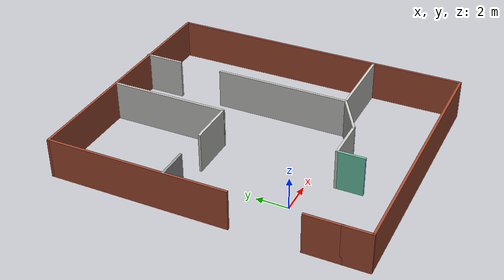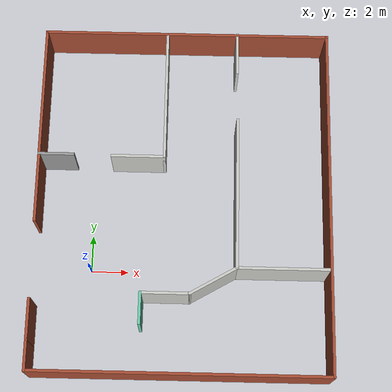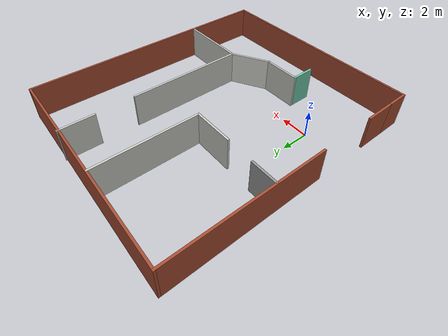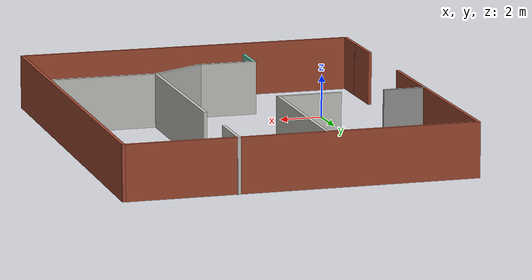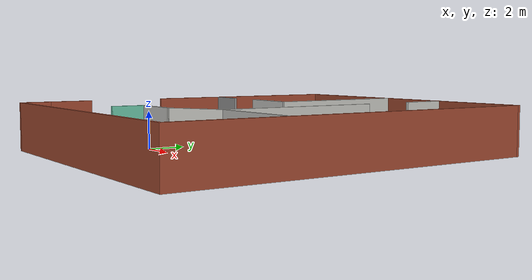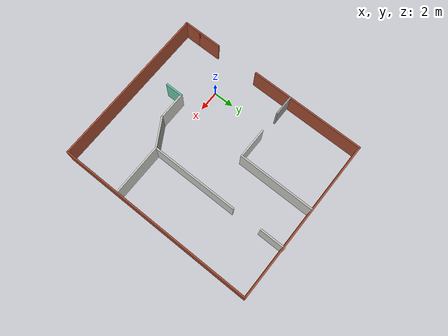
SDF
<?xml version='1.0'?>
<sdf version='1.7'>
  <model name='A_building_floor'>
    <pose>4.94752 3.82619 0 0 -0 0</pose>
    <link name='Wall_10'>
      <collision name='Wall_10_Collision'>
        <geometry>
          <box>
            <size>16 0.15 2.5</size>
          </box>
        </geometry>
        <pose>0 0 1.25 0 -0 0</pose>
      </collision>
      <visual name='Wall_10_Visual'>
        <pose>0 0 1.25 0 -0 0</pose>
        <geometry>
          <box>
            <size>16 0.15 2.5</size>
          </box>
        </geometry>
        <material>
          <script>
            <uri>file://media/materials/scripts/gazebo.material</uri>
            <name>Gazebo/Bricks</name>
          </script>
          <ambient>1 1 1 1</ambient>
        </material>
        <meta>
          <layer>0</layer>
        </meta>
      </visual>
      <pose>0 9.51751 0 0 -0 3.14159</pose>
    </link>
    <link name='Wall_11'>
      <collision name='Wall_11_Collision'>
        <geometry>
          <box>
            <size>11.25 0.15 2.5</size>
          </box>
        </geometry>
        <pose>0 0 1.25 0 -0 0</pose>
      </collision>
      <visual name='Wall_11_Visual'>
        <pose>0 0 1.25 0 -0 0</pose>
        <geometry>
          <box>
            <size>11.25 0.15 2.5</size>
          </box>
        </geometry>
        <material>
          <script>
            <uri>file://media/materials/scripts/gazebo.material</uri>
            <name>Gazebo/Bricks</name>
          </script>
          <ambient>1 1 1 1</ambient>
        </material>
        <meta>
          <layer>0</layer>
        </meta>
      </visual>
      <pose>-7.925 3.96751 0 0 -0 -1.5708</pose>
    </link>
    <link name='Wall_13'>
      <collision name='Wall_13_Collision'>
        <geometry>
          <box>
            <size>2 0.15 2.5</size>
          </box>
        </geometry>
        <pose>0 0 1.25 0 -0 0</pose>
      </collision>
      <visual name='Wall_13_Visual'>
        <pose>0 0 1.25 0 -0 0</pose>
        <geometry>
          <box>
            <size>2 0.15 2.5</size>
          </box>
        </geometry>
        <material>
          <script>
            <uri>file://media/materials/scripts/gazebo.material</uri>
            <name>Gazebo/Grey</name>
          </script>
          <ambient>1 1 1 1</ambient>
        </material>
        <meta>
          <layer>0</layer>
        </meta>
      </visual>
      <pose>-6.99024 2.17797 0 0 -0 0</pose>
    </link>
    <link name='Wall_16'>
      <collision name='Wall_16_Collision'>
        <geometry>
          <box>
            <size>3 0.15 2.5</size>
          </box>
        </geometry>
        <pose>0 0 1.25 0 -0 0</pose>
      </collision>
      <visual name='Wall_16_Visual'>
        <pose>0 0 1.25 0 -0 0</pose>
        <geometry>
          <box>
            <size>3 0.15 2.5</size>
          </box>
        </geometry>
        <material>
          <script>
            <uri>file://media/materials/scripts/gazebo.material</uri>
            <name>Gazebo/CeilingTiled</name>
          </script>
          <ambient>1 1 1 1</ambient>
        </material>
        <meta>
          <layer>0</layer>
        </meta>
      </visual>
      <pose>-2.5015 2.13697 0 0 -0 0</pose>
    </link>
    <link name='Wall_17'>
      <collision name='Wall_17_Collision'>
        <geometry>
          <box>
            <size>7.5 0.15 2.5</size>
          </box>
        </geometry>
        <pose>0 0 1.25 0 -0 0</pose>
      </collision>
      <visual name='Wall_17_Visual'>
        <pose>0 0 1.25 0 -0 0</pose>
        <geometry>
          <box>
            <size>7.5 0.15 2.5</size>
          </box>
        </geometry>
        <material>
          <script>
            <uri>file://media/materials/scripts/gazebo.material</uri>
            <name>Gazebo/CeilingTiled</name>
          </script>
          <ambient>1 1 1 1</ambient>
        </material>
        <meta>
          <layer>0</layer>
        </meta>
      </visual>
      <pose>-1.0765 5.81197 0 0 -0 1.5708</pose>
    </link>
    <link name='Wall_19'>
      <collision name='Wall_19_Collision'>
        <geometry>
          <box>
            <size>2.5 0.15 2.5</size>
          </box>
        </geometry>
        <pose>0 0 1.25 0 -0 0</pose>
      </collision>
      <visual name='Wall_19_Visual'>
        <pose>0 0 1.25 0 -0 0</pose>
        <geometry>
          <box>
            <size>2.5 0.15 2.5</size>
          </box>
        </geometry>
        <material>
          <script>
            <uri>file://media/materials/scripts/gazebo.material</uri>
            <name>Gazebo/CeilingTiled</name>
          </script>
          <ambient>0.996078 0.47451 0.0196078 1</ambient>
        </material>
        <meta>
          <layer>0</layer>
        </meta>
      </visual>
      <pose>2.87022 8.40749 0 0 -0 -1.5708</pose>
    </link>
    <link name='Wall_24'>
      <collision name='Wall_24_Collision'>
        <geometry>
          <box>
            <size>8.5 0.15 2.5</size>
          </box>
        </geometry>
        <pose>0 0 1.25 0 -0 0</pose>
      </collision>
      <visual name='Wall_24_Visual'>
        <pose>0 0 1.25 0 -0 0</pose>
        <geometry>
          <box>
            <size>8.5 0.15 2.5</size>
          </box>
        </geometry>
        <material>
          <script>
            <uri>file://media/materials/scripts/gazebo.material</uri>
            <name>Gazebo/CeilingTiled</name>
          </script>
          <ambient>0.996078 0.47451 0.0196078 1</ambient>
        </material>
        <meta>
          <layer>0</layer>
        </meta>
      </visual>
      <pose>2.92718 0.183572 0 0 -0 -1.5708</pose>
    </link>
    <link name='Wall_25'>
      <collision name='Wall_25_Collision'>
        <geometry>
          <box>
            <size>5 0.15 2.5</size>
          </box>
        </geometry>
        <pose>0 0 1.25 0 -0 0</pose>
      </collision>
      <visual name='Wall_25_Visual'>
        <pose>0 0 1.25 0 -0 0</pose>
        <geometry>
          <box>
            <size>5 0.15 2.5</size>
          </box>
        </geometry>
        <material>
          <script>
            <uri>file://media/materials/scripts/gazebo.material</uri>
            <name>Gazebo/CeilingTiled</name>
          </script>
          <ambient>0.435294 0.796078 0.67451 1</ambient>
        </material>
        <meta>
          <layer>0</layer>
        </meta>
      </visual>
      <pose>5.35218 -3.99143 0 0 -0 0</pose>
    </link>
    <link name='Wall_27'>
      <collision name='Wall_27_Collision'>
        <geometry>
          <box>
            <size>3 0.15 2.5</size>
          </box>
        </geometry>
        <pose>0 0 1.25 0 -0 0</pose>
      </collision>
      <visual name='Wall_27_Visual'>
        <pose>0 0 1.25 0 -0 0</pose>
        <geometry>
          <box>
            <size>3 0.15 2.5</size>
          </box>
        </geometry>
        <material>
          <script>
            <uri>file://media/materials/scripts/gazebo.material</uri>
            <name>Gazebo/CeilingTiled</name>
          </script>
          <ambient>0.435294 0.796078 0.67451 1</ambient>
        </material>
        <meta>
          <layer>0</layer>
        </meta>
      </visual>
      <pose>1.6931 -4.70393 0 0 -0 -2.61799</pose>
    </link>
    <link name='Wall_28'>
      <collision name='Wall_28_Collision'>
        <geometry>
          <box>
            <size>2.75 0.15 2.5</size>
          </box>
        </geometry>
        <pose>0 0 1.25 0 -0 0</pose>
      </collision>
      <visual name='Wall_28_Visual'>
        <pose>0 0 1.25 0 -0 0</pose>
        <geometry>
          <box>
            <size>2.75 0.15 2.5</size>
          </box>
        </geometry>
        <material>
          <script>
            <uri>file://media/materials/scripts/gazebo.material</uri>
            <name>Gazebo/CeilingTiled</name>
          </script>
          <ambient>0.435294 0.796078 0.67451 1</ambient>
        </material>
        <meta>
          <layer>0</layer>
        </meta>
      </visual>
      <pose>-0.84099 -5.41643 0 0 -0 3.14159</pose>
    </link>
    <link name='Wall_29'>
      <collision name='Wall_29_Collision'>
        <geometry>
          <box>
            <size>1.75 0.15 2.5</size>
          </box>
        </geometry>
        <pose>0 0 1.25 0 -0 0</pose>
      </collision>
      <visual name='Wall_29_Visual'>
        <pose>0 0 1.25 0 -0 0</pose>
        <geometry>
          <box>
            <size>1.75 0.15 2.5</size>
          </box>
        </geometry>
        <material>
          <script>
            <uri>file://media/materials/scripts/gazebo.material</uri>
            <name>Gazebo/Grey</name>
          </script>
          <ambient>0.435294 0.796078 0.67451 1</ambient>
        </material>
        <meta>
          <layer>0</layer>
        </meta>
      </visual>
      <pose>-2.14099 -6.21643 0 0 -0 -1.5708</pose>
    </link>
    <link name='Wall_5'>
      <collision name='Wall_5_Collision'>
        <geometry>
          <box>
            <size>2.25 0.15 2.5</size>
          </box>
        </geometry>
        <pose>0 0 1.25 0 -0 0</pose>
      </collision>
      <visual name='Wall_5_Visual'>
        <pose>0 0 1.25 0 -0 0</pose>
        <geometry>
          <box>
            <size>2.25 0.15 2.5</size>
          </box>
        </geometry>
        <material>
          <script>
            <uri>file://media/materials/scripts/gazebo.material</uri>
            <name>Gazebo/Bricks</name>
          </script>
          <ambient>1 1 1 1</ambient>
        </material>
        <meta>
          <layer>0</layer>
        </meta>
      </visual>
      <pose>-7.925 -6.93249 0 0 -0 1.5708</pose>
    </link>
    <link name='Wall_7'>
      <collision name='Wall_7_Collision'>
        <geometry>
          <box>
            <size>1.75 0.15 2.5</size>
          </box>
        </geometry>
        <pose>0 0 1.25 0 -0 0</pose>
      </collision>
      <visual name='Wall_7_Visual'>
        <pose>0 0 1.25 0 -0 0</pose>
        <geometry>
          <box>
            <size>1.75 0.15 2.5</size>
          </box>
        </geometry>
        <material>
          <script>
            <uri>file://media/materials/scripts/gazebo.material</uri>
            <name>Gazebo/Bricks</name>
          </script>
          <ambient>1 1 1 1</ambient>
        </material>
        <meta>
          <layer>0</layer>
        </meta>
      </visual>
      <pose>-7.925 -8.78249 0 0 -0 -1.5708</pose>
    </link>
    <link name='Wall_8'>
      <collision name='Wall_8_Collision'>
        <geometry>
          <box>
            <size>16 0.15 2.5</size>
          </box>
        </geometry>
        <pose>0 0 1.25 0 -0 0</pose>
      </collision>
      <visual name='Wall_8_Visual'>
        <pose>0 0 1.25 0 -0 0</pose>
        <geometry>
          <box>
            <size>16 0.15 2.5</size>
          </box>
        </geometry>
        <material>
          <script>
            <uri>file://media/materials/scripts/gazebo.material</uri>
            <name>Gazebo/Bricks</name>
          </script>
          <ambient>1 1 1 1</ambient>
        </material>
        <meta>
          <layer>0</layer>
        </meta>
      </visual>
      <pose>0 -9.58249 0 0 -0 0</pose>
    </link>
    <link name='Wall_9'>
      <collision name='Wall_9_Collision'>
        <geometry>
          <box>
            <size>19.25 0.15 2.5</size>
          </box>
        </geometry>
        <pose>0 0 1.25 0 -0 0</pose>
      </collision>
      <visual name='Wall_9_Visual'>
        <pose>0 0 1.25 0 -0 0</pose>
        <geometry>
          <box>
            <size>19.25 0.15 2.5</size>
          </box>
        </geometry>
        <material>
          <script>
            <uri>file://media/materials/scripts/gazebo.material</uri>
            <name>Gazebo/Bricks</name>
          </script>
          <ambient>1 1 1 1</ambient>
        </material>
        <meta>
          <layer>0</layer>
        </meta>
      </visual>
      <pose>7.925 -0.032486 0 0 -0 1.5708</pose>
    </link>
    <static>1</static>
  </model>
</sdf>
